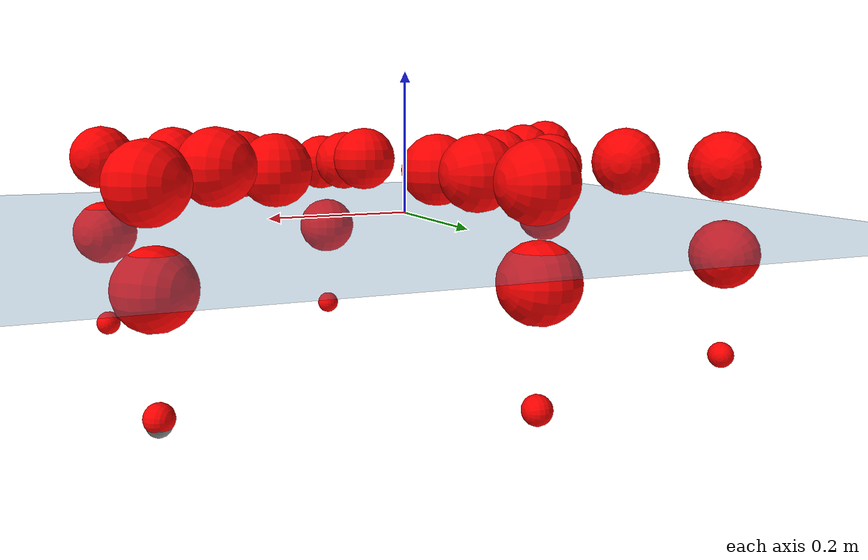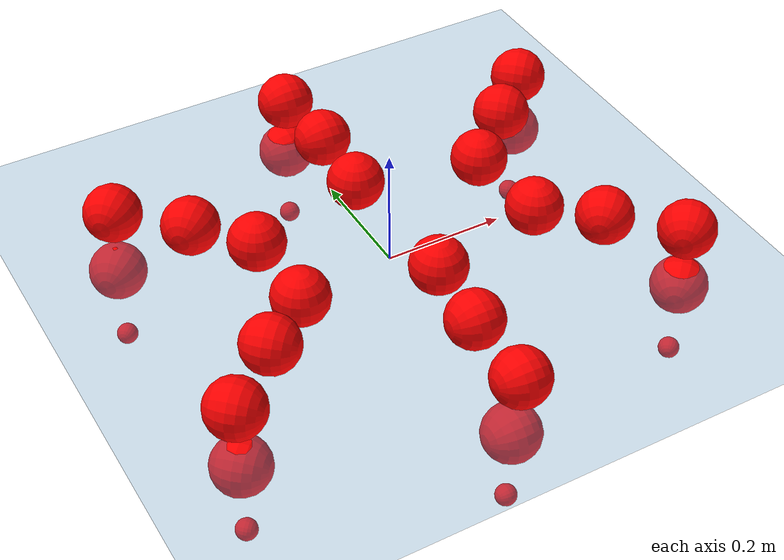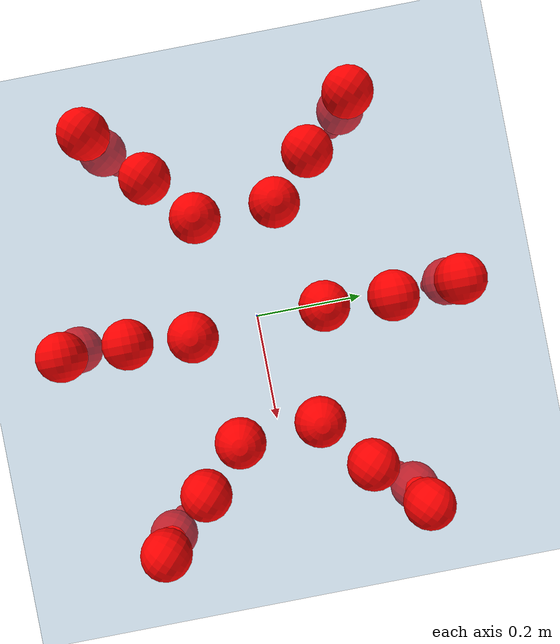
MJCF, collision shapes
<mujoco model="Golem">
  <compiler angle="radian" assetdir="assets" balanceinertia="true" inertiafromgeom="false"/>

  <option timestep="0.005" density="1.2" viscosity="2e-05"/>

  <size nkey="1"/>

  <visual>
    <quality shadowsize="8192"/>
    <map shadowclip="0.5"/>
  </visual>

  <default>
    <default class="/">
      <joint armature="0.01" damping="0.01" frictionloss="0.01"/>
      <geom contype="0" conaffinity="0" group="1" solref="-1000 -80"/>
      <site size="0.01 0.005 0.005" group="5"/>
      <general forcelimited="true" biastype="affine" gainprm="25" biasprm="0 -25 -0.5"/>
      <default class="visual">
        <geom type="mesh" group="2"/>
      </default>
      <default class="collision">
        <geom group="3"/>
      </default>
      <default class="foot">
        <geom size="0.01 0 0" condim="6" group="4" priority="1" solimp="0.015 1 0.01"/>
      </default>
      <default class="reward_collision_sphere">
        <geom group="5" rgba="1 0 0 1"/>
      </default>
    </default>
  </default>

  <asset>
    <texture type="skybox" colorspace="auto" name="//unnamed_texture_0" builtin="gradient" rgb1="0.95 0.95 0.95" rgb2="0.95 0.95 0.95" width="100" height="600"/>
    <texture type="2d" colorspace="auto" name="texplane" builtin="checker" rgb1="0.345 0.575 0.748" rgb2="0.345 0.575 0.748" markrgb="1 1 1" width="512" height="512"/>
    <material name="MatPlane" class="/" texture="texplane" texuniform="true" texrepeat="2 2" specular="0.9"/>
    <mesh name="body" class="/" file="body.stl" scale="0.001 0.001 0.001"/>
    <mesh name="coxa" class="/" file="coxa.stl" scale="0.001 0.001 0.001"/>
    <mesh name="femur" class="/" file="femur.stl" scale="0.001 0.001 0.001"/>
    <mesh name="tibia" class="/" file="tibia.stl" scale="0.001 0.001 0.001"/>
    <mesh name="tarsus" class="/" file="tarsus.stl" scale="0.001 0.001 0.001"/>
  </asset>

  <worldbody>
    <geom name="floor" class="/" size="100 100 0.125" type="plane" group="0" material="MatPlane"/>
    <light name="toplight_shadow" class="/" pos="0 0 5" dir="0.0990148 0.0990148 -0.990148" type="directional" ambient="0.04 0.04 0.04" diffuse="0.55 0.55 0.55" specular="0.12 0.12 0.12"/>
    <light name="toplight_fill" class="/" pos="0 0 5" dir="0.0990148 0.0990148 -0.990148" type="directional" castshadow="false" ambient="0.04 0.04 0.04" diffuse="0.3 0.3 0.3" specular="0.08 0.08 0.08"/>
    <body name="trunk" pos="0.006451 0.00138858 0.0018688" quat="0.999988 0.00130045 0.00161088 0.00443982">
      <inertial pos="-0.000302966 -0.0109638 -0.0103416" quat="0.999768 0.0100551 -0.0136148 0.0133315" mass="6.48601" diaginertia="0.0421665 0.0213918 0.0153448"/>
      <joint name="//unnamed_joint_0" type="free"/>
      <geom name="//unnamed_geom_1" class="/" pos="0 0 0.06836" quat="1 0 0 0" type="mesh" rgba="0.9 0.9 0.9 1" mesh="body"/>
      <site name="imu" class="/" pos="0.161044 -0.039407 0.125286" size="0.01178"/>
      <camera name="track" class="/" pos="0 -2.32023 0" quat="0.707107 0.707107 0 0" mode="trackcom"/>
      <camera name="ego_camera" class="/" pos="0.169749 0 0.106812" quat="-0.5 -0.5 0.5 0.5"/>
      <body name="coxa_RR" pos="-0.229781 -0.104524 0.066618" quat="0.381841 -0.00364905 -0.00184222 -0.924219">
        <inertial pos="-0.00532363 -0.00290726 -0.00323975" quat="0.998439 0.034282 -0.0244448 -0.0367052" mass="0.252086" diaginertia="0.0335396 0.0181949 0.0125193"/>
        <joint name="coxa_joint_RR" class="/" pos="0 0 0" axis="0.0011727 -0.00043149 -0.999999" range="-3.12106 3.35987" armature="0.00547462" damping="0" frictionloss="0.0113115"/>
        <geom name="//unnamed_geom_2" class="/" type="mesh" rgba="0.2 0.2 0.2 1" mesh="coxa"/>
        <geom name="//unnamed_geom_3" class="reward_collision_sphere" size="0.04712" pos="-0.0391729 0 0"/>
        <body name="femur_RR" pos="0.0744208 -0.00859353 0.00501432" quat="0.499256 -0.501331 0.501004 0.498404">
          <inertial pos="-0.00919626 -0.00277614 -0.00173452" quat="0.999033 0.0352808 0.0148156 -0.0216546" mass="0.335002" diaginertia="0.0384052 0.0213359 0.0141338"/>
          <joint name="femur_joint_RR" class="/" pos="0 0 0" axis="-0.00517343 -0.0104976 -0.999932" range="-3.23092 3.24133" armature="0.0115326" damping="0.0589857" frictionloss="0.0101912"/>
          <geom name="//unnamed_geom_4" class="/" type="mesh" rgba="0.9 0.9 0.9 1" mesh="femur"/>
          <geom name="//unnamed_geom_5" class="reward_collision_sphere" size="0.04712"/>
          <body name="tibia_RR" pos="-0.00254793 -0.135335 -0.00488101" quat="0.00170954 0.999998 -0.00106242 0.000228992">
            <inertial pos="0.00673367 0.00183474 0.0018134" quat="0.999899 0.0111274 0.00176675 0.00862523" mass="0.287292" diaginertia="0.0375031 0.0209951 0.0129552"/>
            <joint name="tibia_joint_RR" class="/" pos="0 0 0" axis="-0.0379213 0.00522993 0.999267" range="-3.09073 3.1012" armature="0.011703" damping="0.0171488" frictionloss="0.0128516"/>
            <geom name="//unnamed_geom_6" class="/" type="mesh" rgba="0.2 0.2 0.2 1" mesh="tibia"/>
            <geom name="//unnamed_geom_7" class="reward_collision_sphere" size="0.04712"/>
            <body name="tarsus_RR" pos="0.122534 -0.00626474 0.000455922" quat="0.999997 -0.00234724 0.000459367 -0.000518143">
              <inertial pos="0.0831515 -0.000383635 0.00281969" quat="0.494821 0.500548 0.499761 0.50482" mass="0.286883" diaginertia="0.0333239 0.0181351 0.0125604"/>
              <joint name="tarsus_joint_RR" class="/" pos="0 0 0" axis="0.00135556 0.00434231 0.99999" stiffness="0.00733974" range="-3.12598 3.14325" armature="0.012405" damping="0.0358194" frictionloss="0.0160814"/>
              <geom name="//unnamed_geom_8" class="/" type="mesh" rgba="0.9 0.9 0.9 1" mesh="tarsus"/>
              <geom name="foot_1" class="foot" size="0.0109727" pos="0.146245 0 0" quat="0 -0.707107 0 0.707107"/>
              <geom name="//unnamed_geom_10" class="reward_collision_sphere" size="0.04712"/>
              <geom name="//unnamed_geom_11" class="reward_collision_sphere" size="0.01767" pos="0.140369 0 0"/>
              <site name="foot_1" class="foot" pos="0.146245 0 0" quat="0 -0.707107 0 0.707107" size="0.01178"/>
            </body>
          </body>
        </body>
      </body>
      <body name="coxa_RM" pos="0.00922274 -0.161854 0.0704754" quat="0.706494 9.78102e-05 0.000274715 -0.707719">
        <inertial pos="0.00884889 0.00196186 0.000122448" quat="0.999958 -0.000944894 0.00333788 -0.00846008" mass="0.291469" diaginertia="0.0349668 0.0177429 0.012586"/>
        <joint name="coxa_joint_RM" class="/" pos="0 0 0" axis="-0.00662855 -0.00756579 -0.999949" range="-3.28254 3.11741" armature="0.007781" damping="0" frictionloss="0.010735"/>
        <geom name="//unnamed_geom_12" class="/" type="mesh" rgba="0.2 0.2 0.2 1" mesh="coxa"/>
        <geom name="//unnamed_geom_13" class="reward_collision_sphere" size="0.04712" pos="-0.0391729 0 0"/>
        <body name="femur_RM" pos="0.0809692 -0.0104387 -0.00893749" quat="0.498751 -0.499953 0.501729 0.499562">
          <inertial pos="0.00124016 0.00428322 -0.00227238" quat="0.998641 0.035909 -0.0333737 -0.0176966" mass="0.357276" diaginertia="0.0450378 0.0245112 0.0158898"/>
          <joint name="femur_joint_RM" class="/" pos="0 0 0" axis="-0.000303745 0.0002525 -1" range="-2.92506 3.15567" armature="0.0130434" damping="0.00928178" frictionloss="0.0119488"/>
          <geom name="//unnamed_geom_14" class="/" type="mesh" rgba="0.9 0.9 0.9 1" mesh="femur"/>
          <geom name="//unnamed_geom_15" class="reward_collision_sphere" size="0.04712"/>
          <body name="tibia_RM" pos="0.00886853 -0.125437 -0.00113276" quat="-0.00446992 0.999985 0.00227975 -0.00217465">
            <inertial pos="0.00604047 -0.000911397 0.000666565" quat="0.999409 0.0262965 -0.021448 0.00542021" mass="0.324595" diaginertia="0.0363682 0.0229059 0.0154953"/>
            <joint name="tibia_joint_RM" class="/" pos="0 0 0" axis="0.000234673 -0.0062209 0.999981" stiffness="0.0457297" range="-3.14798 3.13316" armature="0.011206" damping="0.0369591" frictionloss="0.0121806"/>
            <geom name="//unnamed_geom_16" class="/" type="mesh" rgba="0.2 0.2 0.2 1" mesh="tibia"/>
            <geom name="//unnamed_geom_17" class="reward_collision_sphere" size="0.04712"/>
            <body name="tarsus_RM" pos="0.113607 -0.00144007 0.00693589" quat="0.99999 -0.00313198 0.00307958 -0.000710842">
              <inertial pos="0.0760756 0.000780488 0.000982832" quat="0.507796 0.498032 0.496576 0.497513" mass="0.332776" diaginertia="0.0372423 0.0214146 0.0126593"/>
              <joint name="tarsus_joint_RM" class="/" pos="0 0 0" axis="0.0359007 -0.0184657 0.999185" range="-3.01865 2.92136" armature="0.0146346" damping="0.0018322" frictionloss="0.0181843"/>
              <geom name="//unnamed_geom_18" class="/" type="mesh" rgba="0.9 0.9 0.9 1" mesh="tarsus"/>
              <geom name="foot_2" class="foot" size="0.0113289" pos="0.146245 0 0" quat="0 -0.707107 0 0.707107"/>
              <geom name="//unnamed_geom_20" class="reward_collision_sphere" size="0.04712"/>
              <geom name="//unnamed_geom_21" class="reward_collision_sphere" size="0.01767" pos="0.140369 0 0"/>
              <site name="foot_2" class="foot" pos="0.146245 0 0" quat="0 -0.707107 0 0.707107" size="0.01178"/>
            </body>
          </body>
        </body>
      </body>
      <body name="coxa_RF" pos="0.241286 -0.104006 0.0703387" quat="0.922887 -0.00353046 -0.000859248 -0.385054">
        <inertial pos="-0.00920078 -0.00947097 0.00035793" quat="0.999955 -0.00528246 -0.00707372 -0.0035918" mass="0.332723" diaginertia="0.0384168 0.0225848 0.0143428"/>
        <joint name="coxa_joint_RF" class="/" pos="0 0 0" axis="0.000651448 -0.0151494 -0.999885" stiffness="0.0537733" range="-3.20719 3.32957" armature="0.0132023" damping="0" frictionloss="0.0124631"/>
        <geom name="//unnamed_geom_22" class="/" type="mesh" rgba="0.2 0.2 0.2 1" mesh="coxa"/>
        <geom name="//unnamed_geom_23" class="reward_collision_sphere" size="0.04712" pos="-0.0391729 0 0"/>
        <body name="femur_RF" pos="0.0726387 0.00101797 0.00441279" quat="0.497917 -0.500672 0.503174 0.498218">
          <inertial pos="-0.000705688 0.00465211 -0.0103783" quat="0.999182 0.00287846 0.0156699 0.0371621" mass="0.343862" diaginertia="0.0427012 0.0236424 0.0175373"/>
          <joint name="femur_joint_RF" class="/" pos="0 0 0" axis="-0.0324537 -0.0423557 -0.998575" stiffness="0.000395803" range="-3.16693 3.22855" armature="0.00487511" damping="0.0239926" frictionloss="0.00773126"/>
          <geom name="//unnamed_geom_24" class="/" type="mesh" rgba="0.9 0.9 0.9 1" mesh="femur"/>
          <geom name="//unnamed_geom_25" class="reward_collision_sphere" size="0.04712"/>
          <body name="tibia_RF" pos="-0.000464866 -0.128928 0.000302522" quat="-0.000838171 0.999998 0.000309693 0.00184991">
            <inertial pos="-0.00324366 -0.000138551 -0.00183738" quat="0.999355 0.0153483 0.00147797 0.0324307" mass="0.355155" diaginertia="0.0417216 0.0234021 0.0130371"/>
            <joint name="tibia_joint_RF" class="/" pos="0 0 0" axis="-0.00265548 -0.00195317 0.999995" stiffness="0.024548" range="-3.12458 2.94833" armature="0.0124505" damping="0.0189122" frictionloss="0.0106844"/>
            <geom name="//unnamed_geom_26" class="/" type="mesh" rgba="0.2 0.2 0.2 1" mesh="tibia"/>
            <geom name="//unnamed_geom_27" class="reward_collision_sphere" size="0.04712"/>
            <body name="tarsus_RF" pos="0.114088 0.00083888 0.000120927" quat="0.999986 -0.00243145 0.00462342 0.000795254">
              <inertial pos="0.0798704 0.000246115 -0.00138955" quat="0.482217 0.497153 0.520495 0.499391" mass="0.347923" diaginertia="0.0410391 0.0218376 0.0163781"/>
              <joint name="tarsus_joint_RF" class="/" pos="0 0 0" axis="-0.00239861 0.00596597 0.999979" range="-3.12116 3.10129" armature="0.0122524" damping="0.0184026" frictionloss="0.00880489"/>
              <geom name="//unnamed_geom_28" class="/" type="mesh" rgba="0.9 0.9 0.9 1" mesh="tarsus"/>
              <geom name="foot_3" class="foot" size="0.00797691" pos="0.146245 0 0" quat="0 -0.707107 0 0.707107"/>
              <geom name="//unnamed_geom_30" class="reward_collision_sphere" size="0.04712"/>
              <geom name="//unnamed_geom_31" class="reward_collision_sphere" size="0.01767" pos="0.140369 0 0"/>
              <site name="foot_3" class="foot" pos="0.146245 0 0" quat="0 -0.707107 0 0.707107" size="0.01178"/>
            </body>
          </body>
        </body>
      </body>
      <body name="coxa_LR" pos="-0.229498 0.098087 0.0631007" quat="0.382069 0.000911739 0.00411938 0.924124">
        <inertial pos="0.000572888 -0.00210425 -0.00152514" quat="0.999957 -0.0022433 0.00534065 0.00723841" mass="0.348645" diaginertia="0.0428221 0.0217761 0.0161403"/>
        <joint name="coxa_joint_LR" class="/" pos="0 0 0" axis="0.0235418 0.0341301 -0.99914" stiffness="0.0129787" range="-3.29364 3.1403" armature="0.0136002" damping="0" frictionloss="0.0127952"/>
        <geom name="//unnamed_geom_32" class="/" type="mesh" rgba="0.2 0.2 0.2 1" mesh="coxa"/>
        <geom name="//unnamed_geom_33" class="reward_collision_sphere" size="0.04712" pos="-0.0391729 0 0"/>
        <body name="femur_LR" pos="0.0686352 0.00070286 0.00936623" quat="0.499834 -0.500633 0.49917 0.500362">
          <inertial pos="0.00113119 -0.0010941 -0.00380661" quat="0.999909 0.00299971 0.0113545 0.00667164" mass="0.319902" diaginertia="0.0362879 0.0222337 0.0130874"/>
          <joint name="femur_joint_LR" class="/" pos="0 0 0" axis="0.00272252 -0.0032955 0.999991" stiffness="0.0300341" range="-2.9617 2.96492" armature="0.0110617" damping="0.0501107" frictionloss="0.0125207"/>
          <geom name="//unnamed_geom_34" class="/" type="mesh" rgba="0.9 0.9 0.9 1" mesh="femur"/>
          <geom name="//unnamed_geom_35" class="reward_collision_sphere" size="0.04712"/>
          <body name="tibia_LR" pos="0.00401125 -0.130802 -0.00161975" quat="0.000249031 1 -4.40398e-05 -0.000462135">
            <inertial pos="0.0107562 0.00151038 0.00941539" quat="0.999991 0.00112424 0.00159313 -0.00384714" mass="0.32649" diaginertia="0.0383504 0.0186294 0.014714"/>
            <joint name="tibia_joint_LR" class="/" pos="0 0 0" axis="-0.00817187 -0.000173266 -0.999967" stiffness="0.026783" range="-3.32686 2.99722" armature="0.0142209" damping="0" frictionloss="0.0130328"/>
            <geom name="//unnamed_geom_36" class="/" type="mesh" rgba="0.2 0.2 0.2 1" mesh="tibia"/>
            <geom name="//unnamed_geom_37" class="reward_collision_sphere" size="0.04712"/>
            <body name="tarsus_LR" pos="0.119577 0.00402161 -0.00113865" quat="1 -0.000766792 0.000100311 -0.000165994">
              <inertial pos="0.0775615 0.00204896 -0.00112608" quat="0.505181 0.492435 0.500296 0.502" mass="0.303363" diaginertia="0.0356876 0.0173747 0.0124542"/>
              <joint name="tarsus_joint_LR" class="/" pos="0 0 0" axis="0.0323657 -0.0352631 -0.998854" range="-3.15436 3.27981" armature="0.0116584" damping="0.0200586" frictionloss="0.00769551"/>
              <geom name="//unnamed_geom_38" class="/" type="mesh" rgba="0.9 0.9 0.9 1" mesh="tarsus"/>
              <geom name="foot_4" class="foot" size="0.0112182" pos="0.146245 0 0" quat="0.707107 0 -0.707107 0"/>
              <geom name="//unnamed_geom_40" class="reward_collision_sphere" size="0.04712"/>
              <geom name="//unnamed_geom_41" class="reward_collision_sphere" size="0.01767" pos="0.140369 0 0"/>
              <site name="foot_4" class="foot" pos="0.146245 0 0" quat="0.707107 0 -0.707107 0" size="0.01178"/>
            </body>
          </body>
        </body>
      </body>
      <body name="coxa_LM" pos="0.000878815 0.161131 0.0677443" quat="0.707848 0.00110771 -0.000233428 0.706364">
        <inertial pos="-0.00929181 -0.0105059 -0.00155821" quat="0.999998 -0.000152889 0.000504282 0.00172482" mass="0.324385" diaginertia="0.0372441 0.0210288 0.0138318"/>
        <joint name="coxa_joint_LM" class="/" pos="0 0 0" axis="0.000296896 -0.00111508 -0.999999" stiffness="0.033786" range="-3.24072 3.2417" armature="0.00680924" damping="0.0438079" frictionloss="0.00893066"/>
        <geom name="//unnamed_geom_42" class="/" type="mesh" rgba="0.2 0.2 0.2 1" mesh="coxa"/>
        <geom name="//unnamed_geom_43" class="reward_collision_sphere" size="0.04712" pos="-0.0391729 0 0"/>
        <body name="femur_LM" pos="0.0862845 -0.00575476 0.00320514" quat="0.501433 -0.498498 0.503291 0.496752">
          <inertial pos="0.00572887 -0.00484524 -0.000542494" quat="0.999375 0.00808571 0.00471027 -0.0340982" mass="0.322254" diaginertia="0.0343017 0.0223342 0.013678"/>
          <joint name="femur_joint_LM" class="/" pos="0 0 0" axis="-0.00154796 0.00587311 0.999982" range="-3.19077 3.14747" armature="0.0179882" damping="0.0404038" frictionloss="0.0127926"/>
          <geom name="//unnamed_geom_44" class="/" type="mesh" rgba="0.9 0.9 0.9 1" mesh="femur"/>
          <geom name="//unnamed_geom_45" class="reward_collision_sphere" size="0.04712"/>
          <body name="tibia_LM" pos="0.00197163 -0.125422 0.00649035" quat="-3.99428e-05 1 0.000246152 -0.000685563">
            <inertial pos="-0.00163371 -0.00854915 -0.00365733" quat="0.999955 -0.00163807 -0.000285723 0.00931432" mass="0.344302" diaginertia="0.0410852 0.0201763 0.0129455"/>
            <joint name="tibia_joint_LM" class="/" pos="0 0 0" axis="-0.0110913 0.0230124 -0.999674" stiffness="0.00666398" range="-3.09869 3.0086" armature="0.0110871" damping="0.0428539" frictionloss="0.014775"/>
            <geom name="//unnamed_geom_46" class="/" type="mesh" rgba="0.2 0.2 0.2 1" mesh="tibia"/>
            <geom name="//unnamed_geom_47" class="reward_collision_sphere" size="0.04712"/>
            <body name="tarsus_LM" pos="0.108395 0.00491598 -0.00147033" quat="1 0.000138534 -0.000403628 0.000344686">
              <inertial pos="0.0774916 0.00209267 0.000990525" quat="0.49332 0.517848 0.49761 0.490768" mass="0.252947" diaginertia="0.0323438 0.0190591 0.0136938"/>
              <joint name="tarsus_joint_LM" class="/" pos="0 0 0" axis="-0.0113943 0.0100103 -0.999885" range="-3.14253 3.25916" armature="0.0103621" damping="0" frictionloss="0.0118861"/>
              <geom name="//unnamed_geom_48" class="/" type="mesh" rgba="0.9 0.9 0.9 1" mesh="tarsus"/>
              <geom name="foot_5" class="foot" size="0.0110432" pos="0.146245 0 0" quat="0.707107 0 -0.707107 0"/>
              <geom name="//unnamed_geom_50" class="reward_collision_sphere" size="0.04712"/>
              <geom name="//unnamed_geom_51" class="reward_collision_sphere" size="0.01767" pos="0.140369 0 0"/>
              <site name="foot_5" class="foot" pos="0.146245 0 0" quat="0.707107 0 -0.707107 0" size="0.01178"/>
            </body>
          </body>
        </body>
      </body>
      <body name="coxa_LF" pos="0.232372 0.100851 0.0702562" quat="0.923806 0.000153352 2.55208e-05 0.382861">
        <inertial pos="0.00135812 -0.00062531 -0.000153444" quat="1 0.000432486 0.000257165 -0.000450574" mass="0.35819" diaginertia="0.0407887 0.020784 0.0137176"/>
        <joint name="coxa_joint_LF" class="/" pos="0 0 0" axis="0.0448557 -0.0196986 -0.998799" stiffness="0.000943331" range="-3.10548 3.2052" armature="0.0105353" damping="0.0191222" frictionloss="0.0120678"/>
        <geom name="//unnamed_geom_52" class="/" type="mesh" rgba="0.2 0.2 0.2 1" mesh="coxa"/>
        <geom name="//unnamed_geom_53" class="reward_collision_sphere" size="0.04712" pos="-0.0391729 0 0"/>
        <body name="femur_LF" pos="0.0805489 -0.0106287 0.0111381" quat="0.499892 -0.499885 0.500142 0.500081">
          <inertial pos="0.00812229 -0.0033763 0.000962351" quat="0.999955 0.00939134 0.00155184 -0.000195568" mass="0.317487" diaginertia="0.04026 0.0242053 0.0151936"/>
          <joint name="femur_joint_LF" class="/" pos="0 0 0" axis="0.013084 -0.0370759 0.999227" range="-3.14042 3.3188" armature="0.0160413" damping="0.0122167" frictionloss="0.0117126"/>
          <geom name="//unnamed_geom_54" class="/" type="mesh" rgba="0.9 0.9 0.9 1" mesh="femur"/>
          <geom name="//unnamed_geom_55" class="reward_collision_sphere" size="0.04712"/>
          <body name="tibia_LF" pos="0.00938451 -0.126322 -0.00348847" quat="0.000391648 1 0.000313453 3.07211e-06">
            <inertial pos="-0.0014763 -0.00359207 0.000829771" quat="0.998963 0.0183766 -0.0371296 0.0188687" mass="0.33752" diaginertia="0.0382871 0.0208566 0.0132031"/>
            <joint name="tibia_joint_LF" class="/" pos="0 0 0" axis="0.00311619 0.00285547 -0.999991" range="-3.10023 3.225" armature="0.0182299" damping="0.0320099" frictionloss="0.0117995"/>
            <geom name="//unnamed_geom_56" class="/" type="mesh" rgba="0.2 0.2 0.2 1" mesh="tibia"/>
            <geom name="//unnamed_geom_57" class="reward_collision_sphere" size="0.04712"/>
            <body name="tarsus_LF" pos="0.112762 -0.00352634 -0.00302305" quat="0.999985 -0.00529963 -0.000918341 -0.000846251">
              <inertial pos="0.071193 0.00871682 0.00180607" quat="0.497665 0.495118 0.499496 0.507633" mass="0.363895" diaginertia="0.0418748 0.0227259 0.0150423"/>
              <joint name="tarsus_joint_LF" class="/" pos="0 0 0" axis="-0.0274297 0.032569 -0.999093" stiffness="0.00320866" range="-3.30385 3.16584" armature="0.0123137" damping="0" frictionloss="0.0106861"/>
              <geom name="//unnamed_geom_58" class="/" type="mesh" rgba="0.9 0.9 0.9 1" mesh="tarsus"/>
              <geom name="foot_6" class="foot" size="0.014976" pos="0.146245 0 0" quat="0.707107 0 -0.707107 0"/>
              <geom name="//unnamed_geom_60" class="reward_collision_sphere" size="0.04712"/>
              <geom name="//unnamed_geom_61" class="reward_collision_sphere" size="0.01767" pos="0.140369 0 0"/>
              <site name="foot_6" class="foot" pos="0.146245 0 0" quat="0.707107 0 -0.707107 0" size="0.01178"/>
            </body>
          </body>
        </body>
      </body>
    </body>
  </worldbody>

  <contact>
    <pair class="/" geom1="floor" geom2="foot_1" name="//unnamed_contact_0"/>
    <pair class="/" geom1="floor" geom2="foot_2" name="//unnamed_contact_1"/>
    <pair class="/" geom1="floor" geom2="foot_3" name="//unnamed_contact_2"/>
    <pair class="/" geom1="floor" geom2="foot_4" name="//unnamed_contact_3"/>
    <pair class="/" geom1="floor" geom2="foot_5" name="//unnamed_contact_4"/>
    <pair class="/" geom1="floor" geom2="foot_6" name="//unnamed_contact_5"/>
  </contact>

  <actuator>
    <general name="coxa_joint_RR" class="/" joint="coxa_joint_RR" forcerange="-9.08819 9.08819" gainprm="25.1497" biasprm="0 -25.1497 -0.642343"/>
    <general name="femur_joint_RR" class="/" joint="femur_joint_RR" forcerange="-8.72169 8.72169" gainprm="25.1497" biasprm="0 -25.1497 -0.642343"/>
    <general name="tibia_joint_RR" class="/" joint="tibia_joint_RR" forcerange="-9.2181 9.2181" gainprm="25.1497" biasprm="0 -25.1497 -0.642343"/>
    <general name="tarsus_joint_RR" class="/" joint="tarsus_joint_RR" forcerange="-8.87899 8.87899" gainprm="25.1497" biasprm="0 -25.1497 -0.642343"/>
    <general name="coxa_joint_RM" class="/" joint="coxa_joint_RM" forcerange="-9.0141 9.0141" gainprm="25.1497" biasprm="0 -25.1497 -0.642343"/>
    <general name="femur_joint_RM" class="/" joint="femur_joint_RM" forcerange="-10.894 10.894" gainprm="25.1497" biasprm="0 -25.1497 -0.642343"/>
    <general name="tibia_joint_RM" class="/" joint="tibia_joint_RM" forcerange="-8.42303 8.42303" gainprm="25.1497" biasprm="0 -25.1497 -0.642343"/>
    <general name="tarsus_joint_RM" class="/" joint="tarsus_joint_RM" forcerange="-7.9686 7.9686" gainprm="25.1497" biasprm="0 -25.1497 -0.642343"/>
    <general name="coxa_joint_RF" class="/" joint="coxa_joint_RF" forcerange="-11.0774 11.0774" gainprm="25.1497" biasprm="0 -25.1497 -0.642343"/>
    <general name="femur_joint_RF" class="/" joint="femur_joint_RF" forcerange="-10.7385 10.7385" gainprm="25.1497" biasprm="0 -25.1497 -0.642343"/>
    <general name="tibia_joint_RF" class="/" joint="tibia_joint_RF" forcerange="-6.60047 6.60047" gainprm="25.1497" biasprm="0 -25.1497 -0.642343"/>
    <general name="tarsus_joint_RF" class="/" joint="tarsus_joint_RF" forcerange="-7.64581 7.64581" gainprm="25.1497" biasprm="0 -25.1497 -0.642343"/>
    <general name="coxa_joint_LR" class="/" joint="coxa_joint_LR" forcerange="-8.17928 8.17928" gainprm="25.1497" biasprm="0 -25.1497 -0.642343"/>
    <general name="femur_joint_LR" class="/" joint="femur_joint_LR" forcerange="-9.94875 9.94875" gainprm="25.1497" biasprm="0 -25.1497 -0.642343"/>
    <general name="tibia_joint_LR" class="/" joint="tibia_joint_LR" forcerange="-11.6976 11.6976" gainprm="25.1497" biasprm="0 -25.1497 -0.642343"/>
    <general name="tarsus_joint_LR" class="/" joint="tarsus_joint_LR" forcerange="-5.26305 5.26305" gainprm="25.1497" biasprm="0 -25.1497 -0.642343"/>
    <general name="coxa_joint_LM" class="/" joint="coxa_joint_LM" forcerange="-7.37472 7.37472" gainprm="25.1497" biasprm="0 -25.1497 -0.642343"/>
    <general name="femur_joint_LM" class="/" joint="femur_joint_LM" forcerange="-9.00002 9.00002" gainprm="25.1497" biasprm="0 -25.1497 -0.642343"/>
    <general name="tibia_joint_LM" class="/" joint="tibia_joint_LM" forcerange="-8.60343 8.60343" gainprm="25.1497" biasprm="0 -25.1497 -0.642343"/>
    <general name="tarsus_joint_LM" class="/" joint="tarsus_joint_LM" forcerange="-9.42993 9.42993" gainprm="25.1497" biasprm="0 -25.1497 -0.642343"/>
    <general name="coxa_joint_LF" class="/" joint="coxa_joint_LF" forcerange="-8.49502 8.49502" gainprm="25.1497" biasprm="0 -25.1497 -0.642343"/>
    <general name="femur_joint_LF" class="/" joint="femur_joint_LF" forcerange="-8.58444 8.58444" gainprm="25.1497" biasprm="0 -25.1497 -0.642343"/>
    <general name="tibia_joint_LF" class="/" joint="tibia_joint_LF" forcerange="-7.97703 7.97703" gainprm="25.1497" biasprm="0 -25.1497 -0.642343"/>
    <general name="tarsus_joint_LF" class="/" joint="tarsus_joint_LF" forcerange="-8.10136 8.10136" gainprm="25.1497" biasprm="0 -25.1497 -0.642343"/>
  </actuator>

  <sensor>
    <gyro site="imu" name="imu_angular_velocity"/>
    <velocimeter site="imu" name="imu_linear_velocity"/>
    <framelinvel objtype="site" objname="foot_1" name="foot_1_global_linear_velocity"/>
    <framelinvel objtype="site" objname="foot_2" name="foot_2_global_linear_velocity"/>
    <framelinvel objtype="site" objname="foot_3" name="foot_3_global_linear_velocity"/>
    <framelinvel objtype="site" objname="foot_4" name="foot_4_global_linear_velocity"/>
    <framelinvel objtype="site" objname="foot_5" name="foot_5_global_linear_velocity"/>
    <framelinvel objtype="site" objname="foot_6" name="foot_6_global_linear_velocity"/>
  </sensor>

  <keyframe>
    <key name="home" qpos="0 0 0.1457 1 0 0 0 0 0 0 0 0 0 0 0 0 0 0 0 0 0 0 0 0 0 0 0 0 0 0 0"/>
  </keyframe>
</mujoco>
